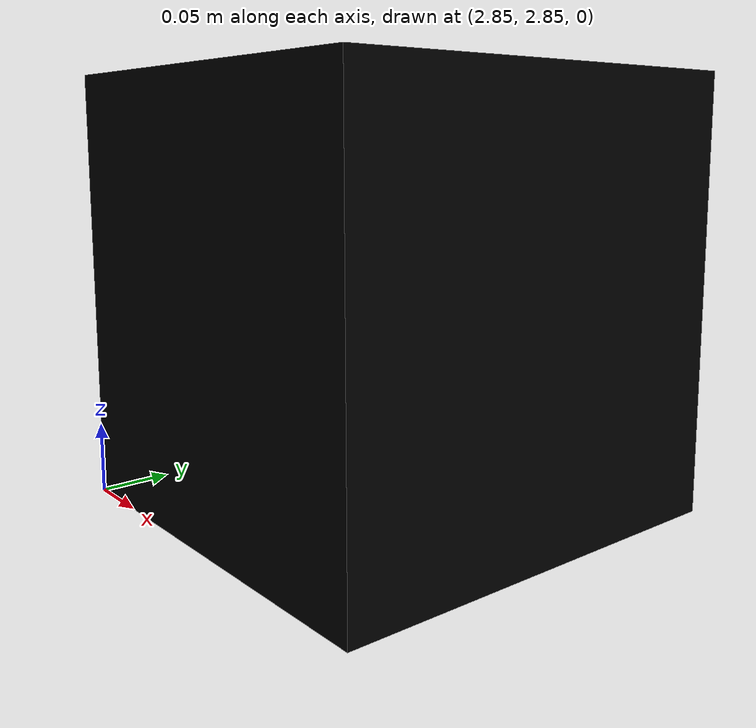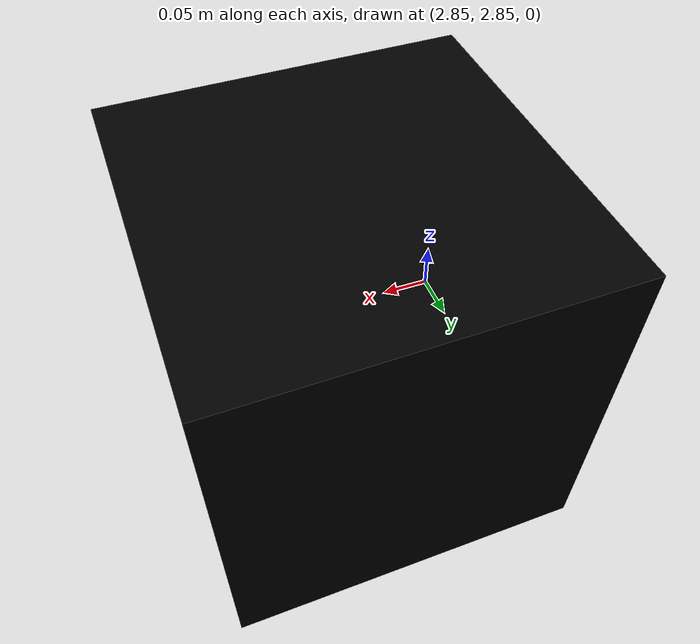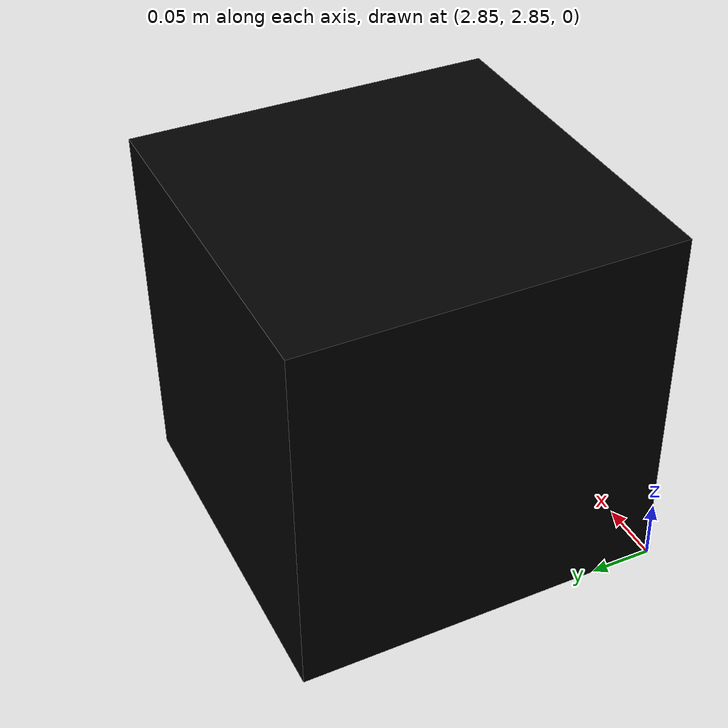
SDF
<?xml version='1.0'?>
<sdf version='1.4'>
  <model name="AruCo_Block_8">
    <static>true</static>
    <link name='chassis'>
            <pose>3 3 0.15 0 0 0</pose>

            <collision name='collision'>
              <geometry>
                <box>
                  <size>.3 .3 .3</size>
                </box>
              </geometry>
            </collision>

            <visual name='visual_8'>
              <geometry>
                <box>
                  <size>.3 .3 .3</size>
                </box>
              </geometry>
              <material>
                <script>
                <uri>model://AruCo_Block_8/materials/scripts</uri>
                <uri>model://AruCo_Block_8/materials/textures</uri>
                <name>block8</name>
                </script>
                <ambient>0 0 0 1</ambient>
                <diffuse>0 0 0 1</diffuse>
                <specular>0 0 0 0</specular>
                <emissive>1 1 1 1</emissive>
              </material>
            </visual>
          </link>
  </model>
</sdf>
